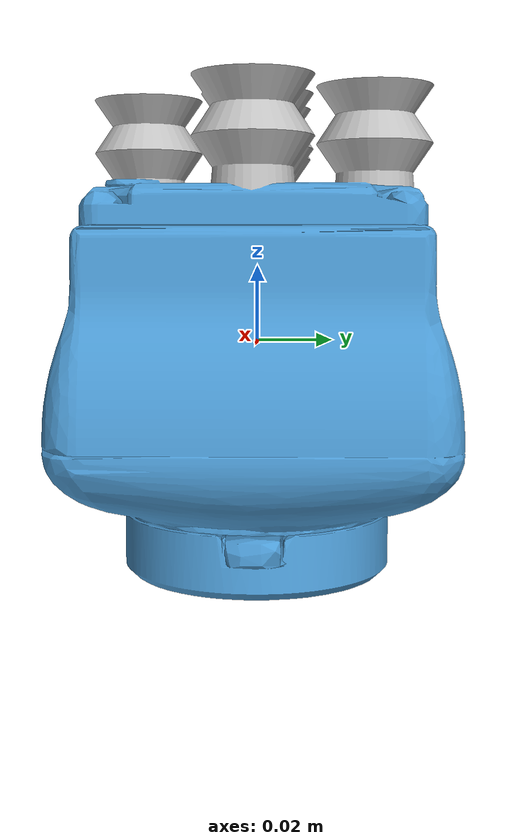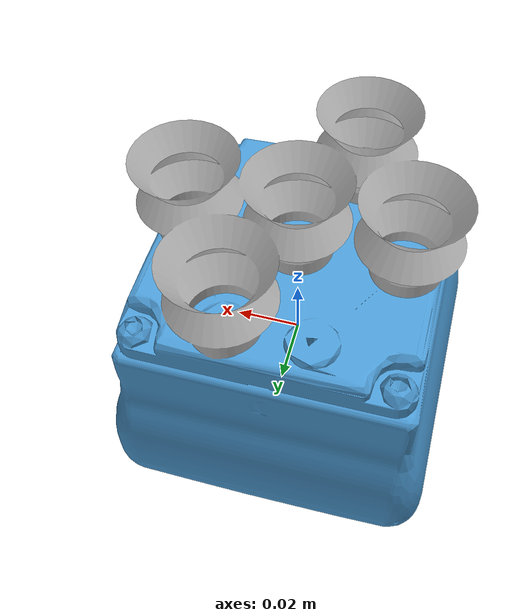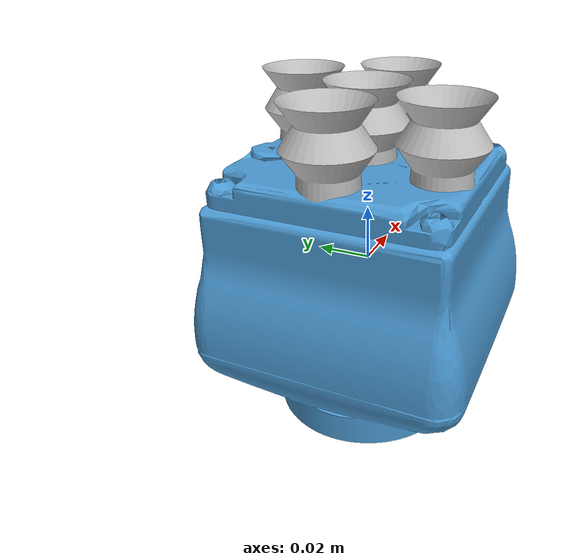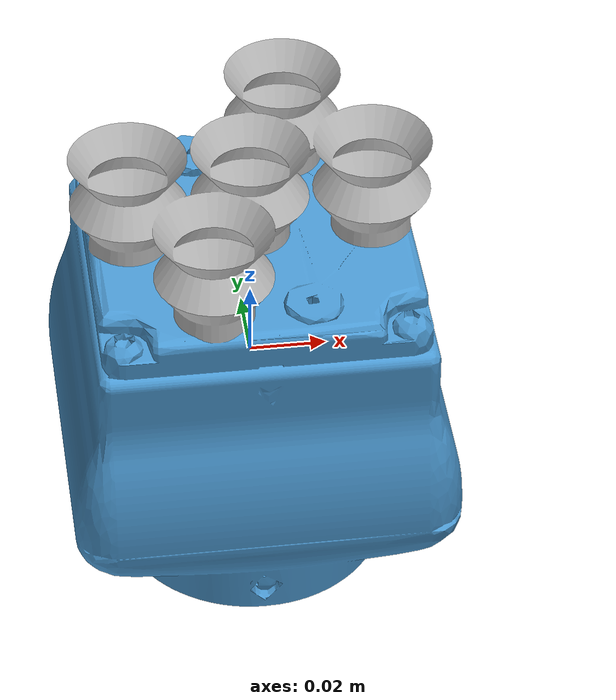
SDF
<?xml version="1.0"?>
<sdf version="1.6">
  <model name="sema_vgc10">
    <link name="sema_vgc10_link">
      <visual name="sema_vgc10_visual">
        <pose>0 0 -0.062 0 0 0</pose>
        <geometry>
          <mesh>
            <uri>model://sema_vgc10/mesh/sema_vgc10.dae</uri>
          </mesh>
        </geometry>
      </visual>
      <collision name="sema_vgc10_collision">
        <geometry>
          <box>
            <size>0.1 0.1 0.122</size>
          </box>
        </geometry>
      </collision>
      <inertial>
        <mass>0.84</mass>
        <inertia>
          <ixx>0.00355</ixx>
          <iyy>0.00281</iyy>
          <izz>0.00434</izz>
          <ixy>0</ixy>
          <ixz>0</ixz>
          <iyz>0</iyz>
        </inertia>
      </inertial>
    </link>
  </model>
</sdf>
